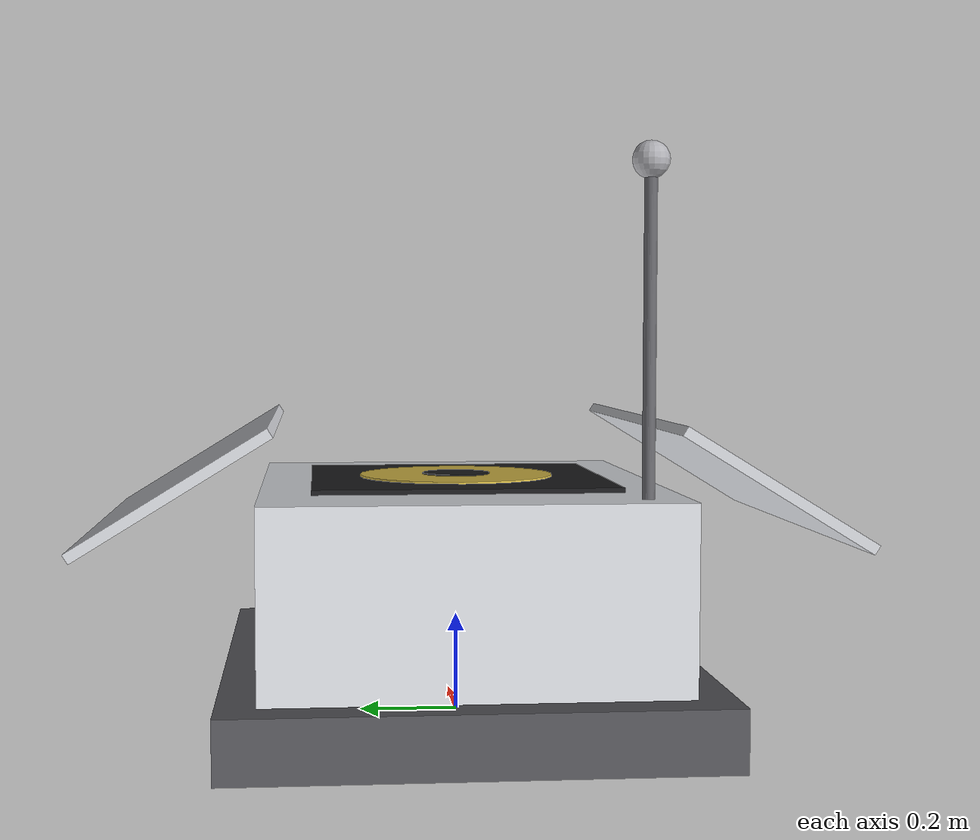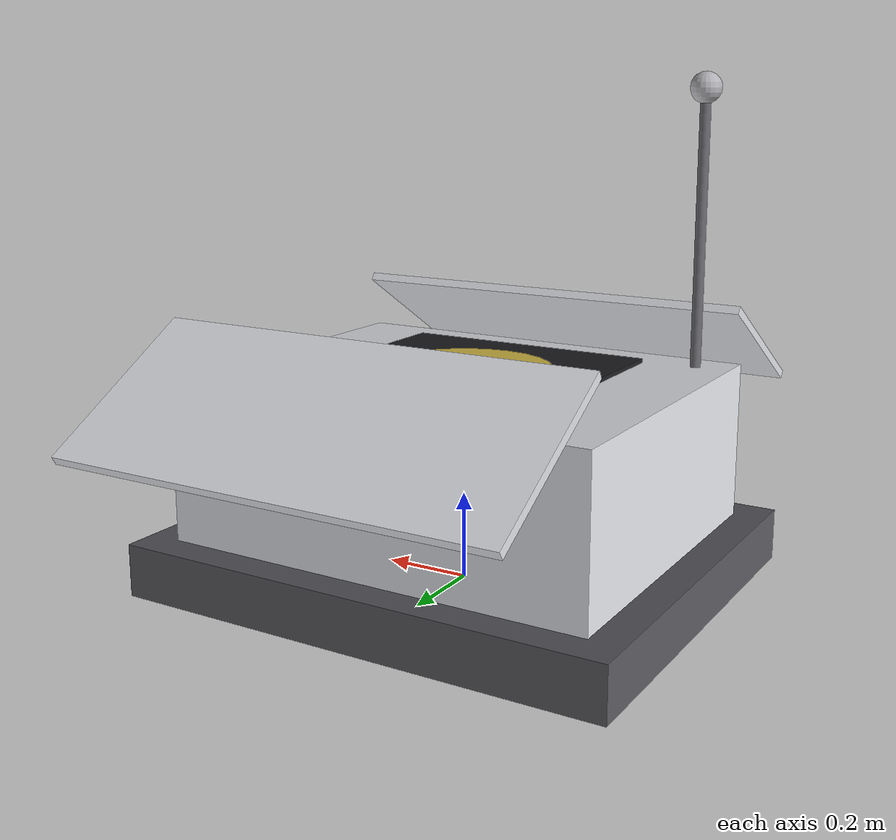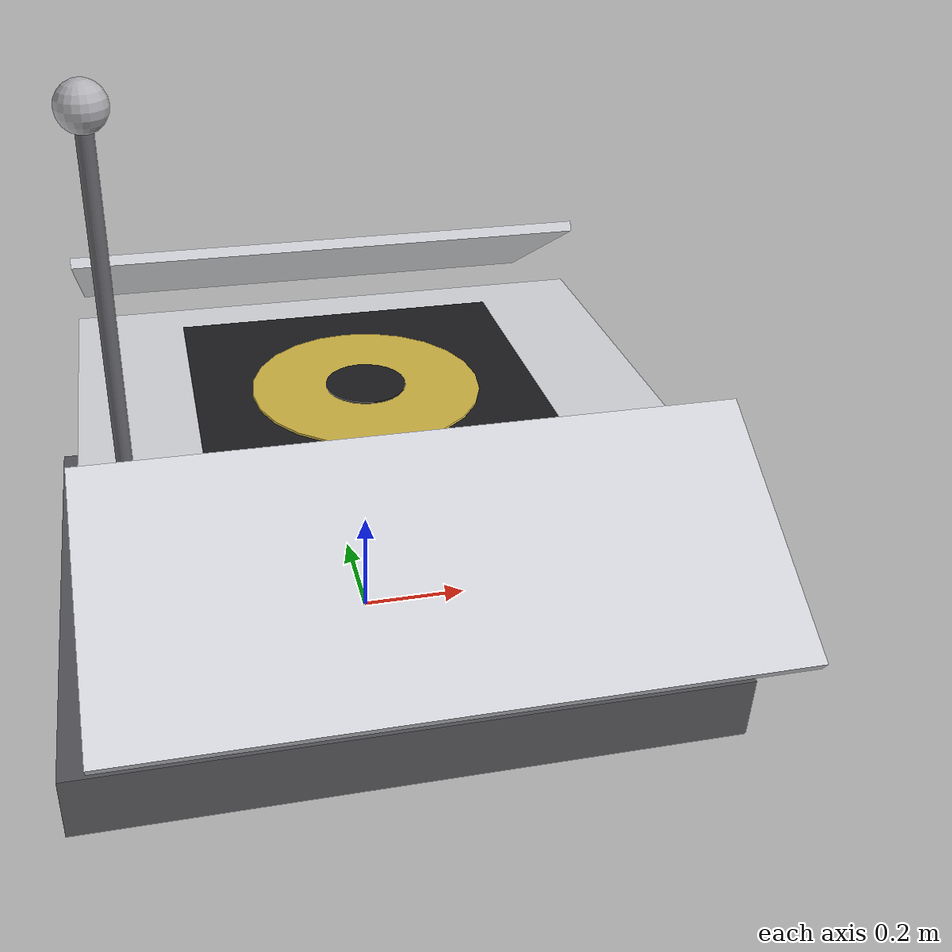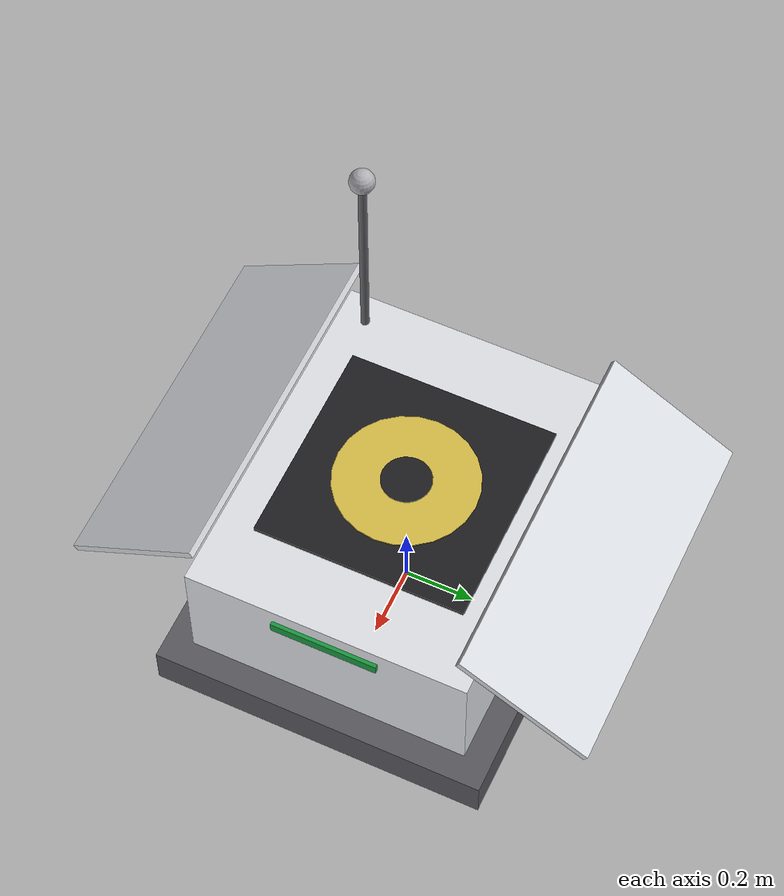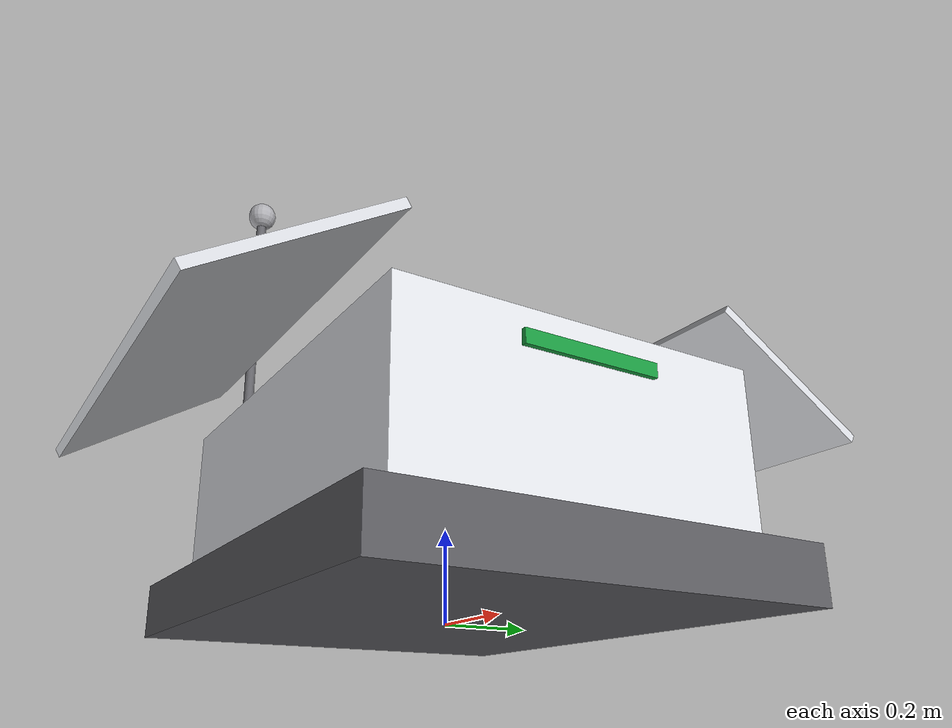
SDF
<?xml version="1.0"?>
<sdf version="1.9">
  <model name="dji_dock3">
    <static>true</static>
    <link name="body">
      <!-- 받침 베이스 -->
      <visual name="base">
        <pose>0 0 0.06 0 0 0</pose>
        <geometry><box><size>1.15 0.95 0.12</size></box></geometry>
        <material><ambient>0.25 0.25 0.26 1</ambient><diffuse>0.35 0.35 0.37 1</diffuse></material>
      </visual>
      <collision name="base_col">
        <pose>0 0 0.06 0 0 0</pose>
        <geometry><box><size>1.15 0.95 0.12</size></box></geometry>
      </collision>

      <!-- 본체 (화이트 인클로저) -->
      <visual name="shell">
        <pose>0 0 0.30 0 0 0</pose>
        <geometry><box><size>1.0 0.8 0.36</size></box></geometry>
        <material><ambient>0.75 0.76 0.78 1</ambient><diffuse>0.88 0.89 0.91 1</diffuse>
          <specular>0.2 0.2 0.2 1</specular></material>
      </visual>
      <collision name="shell_col">
        <pose>0 0 0.30 0 0 0</pose>
        <geometry><box><size>1.0 0.8 0.36</size></box></geometry>
      </collision>

      <!-- 개방된 리드 패널 (좌/우, 바깥으로 젖혀짐) -->
      <visual name="lid_l">
        <pose>0 0.55 0.50 -0.55 0 0</pose>
        <geometry><box><size>1.0 0.42 0.02</size></box></geometry>
        <material><diffuse>0.85 0.86 0.88 1</diffuse></material>
      </visual>
      <visual name="lid_r">
        <pose>0 -0.55 0.50 0.55 0 0</pose>
        <geometry><box><size>1.0 0.42 0.02</size></box></geometry>
        <material><diffuse>0.85 0.86 0.88 1</diffuse></material>
      </visual>

      <!-- 내부 착륙 패드 (H 마커) — 드론 스폰 위치 z≈0.50 -->
      <visual name="pad">
        <pose>0 0 0.485 0 0 0</pose>
        <geometry><box><size>0.6 0.6 0.01</size></box></geometry>
        <material><diffuse>0.12 0.12 0.13 1</diffuse></material>
      </visual>
      <collision name="pad_col">
        <pose>0 0 0.485 0 0 0</pose>
        <geometry><box><size>0.6 0.6 0.01</size></box></geometry>
      </collision>
      <visual name="pad_marker">
        <pose>0 0 0.492 0 0 0</pose>
        <geometry><cylinder><radius>0.2</radius><length>0.004</length></cylinder></geometry>
        <material><diffuse>0.85 0.74 0.28 1</diffuse></material>
      </visual>
      <visual name="pad_marker_core">
        <pose>0 0 0.495 0 0 0</pose>
        <geometry><cylinder><radius>0.07</radius><length>0.004</length></cylinder></geometry>
        <material><diffuse>0.12 0.12 0.13 1</diffuse></material>
      </visual>

      <!-- 상태 LED 바 -->
      <visual name="led">
        <pose>0.505 0 0.42 0 0 0</pose>
        <geometry><box><size>0.012 0.3 0.03</size></box></geometry>
        <material><emissive>0.1 0.7 0.25 1</emissive><diffuse>0.1 0.6 0.25 1</diffuse></material>
      </visual>

      <!-- 기상 센서 마스트 (풍속/강우) -->
      <visual name="mast">
        <pose>-0.42 -0.32 0.78 0 0 0</pose>
        <geometry><cylinder><radius>0.012</radius><length>0.6</length></cylinder></geometry>
        <material><diffuse>0.4 0.4 0.42 1</diffuse></material>
      </visual>
      <visual name="anemometer">
        <pose>-0.42 -0.32 1.1 0 0 0</pose>
        <geometry><sphere><radius>0.035</radius></sphere></geometry>
        <material><diffuse>0.7 0.7 0.72 1</diffuse></material>
      </visual>

      <!-- 야간용 패드 조명 -->
      <light name="pad_light" type="point">
        <pose>0 0 0.9 0 0 0</pose>
        <diffuse>0.8 0.85 0.95 1</diffuse>
        <attenuation><range>8</range><constant>0.4</constant>
          <linear>0.2</linear><quadratic>0.05</quadratic></attenuation>
        <cast_shadows>false</cast_shadows>
        <intensity>1.2</intensity>
      </light>
    </link>
  </model>
</sdf>
